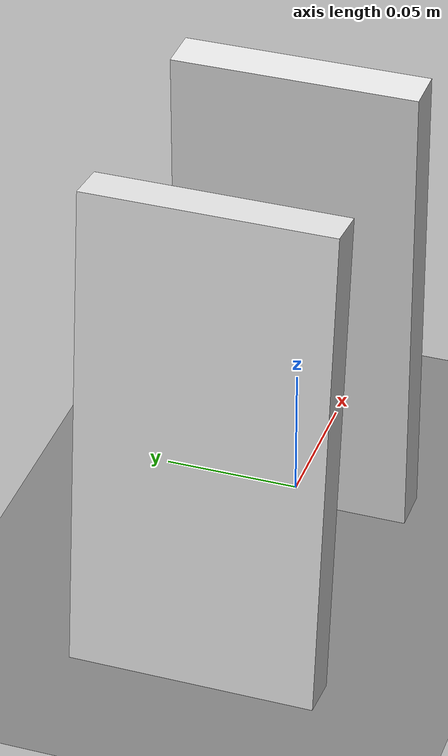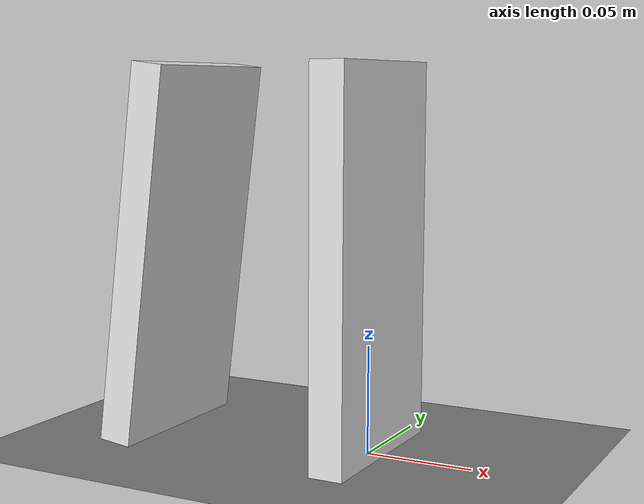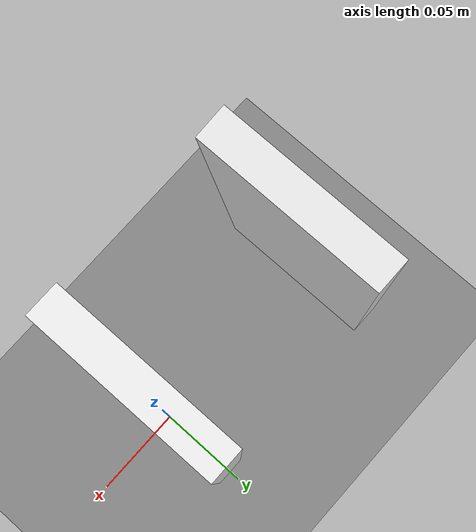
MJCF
<mujoco>
  <custom>
    <numeric name="duration" data="1.0"/>
  </custom>

  <default>
    <default class="domino">
      <geom type="box" size=".008 .044 .089" rgba=".9 .9 .9 1" mass="0.09"/>
    </default>
  </default>

  <visual>
    <global realtime="0.2"/>
  </visual>

  <option cone="elliptic" impratio="10">
    <flag sleep="enable"/>
  </option>

  <worldbody>
    <light pos="0 0 3"/>
    <geom name="floor" type="plane" size="1 1 .01" pos="0 0 1e-6"/>

    <body pos="-.1 0 .089" euler="0 7 0">
      <freejoint/>
      <geom name="1" type="box" class="domino"/>
    </body>

    <body pos="0 0 .089">
      <freejoint/>
      <geom name="2" type="box" class="domino" contype="0" conaffinity="0"/>
    </body>
  </worldbody>

  <contact>
    <pair geom1="1" geom2="2"/>
    <pair geom1="2" geom2="floor"/>
  </contact>
</mujoco>
